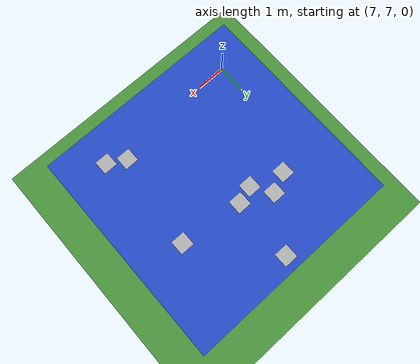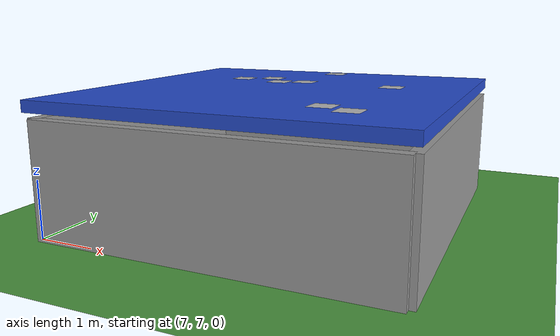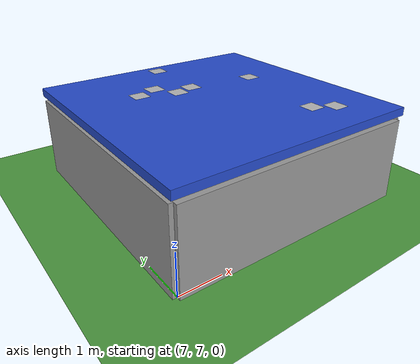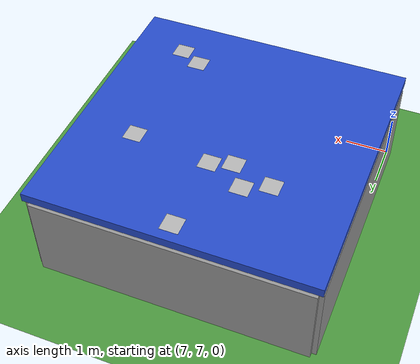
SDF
<sdf version="1.6">
 <world name="default">
  <wind><linear_velocity>11 11 0</linear_velocity></wind>
  <scene><shadows>0</shadows></scene>
  <physics type="ode">
   <ode>
    <solver><type>quick</type><iters>100</iters><sor>1.0</sor></solver>
    <constraints>
     <cfm>0.0</cfm>
     <erp>0.2</erp>
     <contact_max_correcting_vel>0.1</contact_max_correcting_vel>
     <contact_surface_layer>0.0</contact_surface_layer>
    </constraints>
   </ode>
   <real_time_update_rate>-1</real_time_update_rate>
  </physics>
  <gravity>0 0 -9.8</gravity>
  <include><uri>model://sun</uri></include>
  <model name="ground_plane">
   <static>true</static>
   <link name="link">
    <collision name="collision">
     <geometry><plane><normal>0 0 1</normal><size>5000 5000</size></plane></geometry>
     <surface><friction><ode><mu>100</mu><mu2>50</mu2></ode></friction></surface>
    </collision>
    <visual name="background">
     <pose>0 0 -0.1 0 0 0</pose>
     <cast_shadows>false</cast_shadows>
     <geometry><plane><normal>0 0 1</normal><size>50 50</size></plane></geometry>
     <material>
      <script><uri>file://media/materials/scripts/gazebo.material</uri><name>Gazebo/Grass</name></script>
     </material>
    </visual>
    <visual name="qrcode1">
     <pose>0 0 0.005 0 0 0</pose>
     <cast_shadows>false</cast_shadows>
     <geometry><plane><normal>0 0 1</normal><size>0.2 0.2</size></plane></geometry>
     <material>
      <script><uri>file://media/materials/scripts/gazebo2.material</uri><name>Gazebo/Aruco72</name></script>
     </material>
    </visual>
   </link>
  </model>
  <model name="house">
   <pose>10 10 0 0 0 0</pose>
   <static>true</static>
   <link name="link">
    <collision name="wall_north">
     <pose>0 3 1 0 0 0</pose>
     <geometry><box><size>6 0.2 2</size></box></geometry>
    </collision>
    <visual name="wall_north">
     <pose>0 3 1 0 0 0</pose>
     <geometry><box><size>6 0.2 2</size></box></geometry>
     <material>
      <script><uri>file://media/materials/scripts/gazebo.material</uri><name>Gazebo/Grey</name></script>
     </material>
    </visual>
    <collision name="wall_south">
     <pose>0 -3 1 0 0 0</pose>
     <geometry><box><size>6 0.2 2</size></box></geometry>
    </collision>
    <visual name="wall_south">
     <pose>0 -3 1 0 0 0</pose>
     <geometry><box><size>6 0.2 2</size></box></geometry>
     <material>
      <script><uri>file://media/materials/scripts/gazebo.material</uri><name>Gazebo/Grey</name></script>
     </material>
    </visual>
    <collision name="wall_east">
     <pose>3 0 1 0 0 0</pose>
     <geometry><box><size>0.2 6 2</size></box></geometry>
    </collision>
    <visual name="wall_east">
     <pose>3 0 1 0 0 0</pose>
     <geometry><box><size>0.2 6 2</size></box></geometry>
     <material>
      <script><uri>file://media/materials/scripts/gazebo.material</uri><name>Gazebo/Grey</name></script>
     </material>
    </visual>
    <collision name="wall_west">
     <pose>-3 0 1 0 0 0</pose>
     <geometry><box><size>0.2 6 2</size></box></geometry>
    </collision>
    <visual name="wall_west">
     <pose>-3 0 1 0 0 0</pose>
     <geometry><box><size>0.2 6 2</size></box></geometry>
     <material>
      <script><uri>file://media/materials/scripts/gazebo.material</uri><name>Gazebo/Grey</name></script>
     </material>
    </visual>
    <collision name="roof">
     <pose>0 0 2.2 0 0 0</pose>
     <geometry><box><size>6.2 6.2 0.2</size></box></geometry>
    </collision>
    <visual name="roof">
     <pose>0 0 2.2 0 0 0</pose>
     <geometry><box><size>6.2 6.2 0.2</size></box></geometry>
     <material>
      <script><uri>file://media/materials/scripts/gazebo.material</uri><name>Gazebo/Blue</name></script>
     </material>
    </visual>
    <visual name="aruco_roof_35_1">
     <pose>1.901 -2.130 2.310 0 0 0</pose>
     <cast_shadows>false</cast_shadows>
     <geometry><plane><normal>0 0 1</normal><size>0.4 0.4</size></plane></geometry>
     <material>
      <script><uri>file://media/materials/scripts/gazebo2.material</uri><name>Gazebo/Aruco35</name></script>
     </material>
    </visual>
    <visual name="aruco_roof_72_2">
     <pose>-0.856 1.350 2.310 0 0 0</pose>
     <cast_shadows>false</cast_shadows>
     <geometry><plane><normal>0 0 1</normal><size>0.4 0.4</size></plane></geometry>
     <material>
      <script><uri>file://media/materials/scripts/gazebo2.material</uri><name>Gazebo/Aruco72</name></script>
     </material>
    </visual>
    <visual name="aruco_roof_35_3">
     <pose>-0.012 0.958 2.310 0 0 0</pose>
     <cast_shadows>false</cast_shadows>
     <geometry><plane><normal>0 0 1</normal><size>0.4 0.4</size></plane></geometry>
     <material>
      <script><uri>file://media/materials/scripts/gazebo2.material</uri><name>Gazebo/Aruco35</name></script>
     </material>
    </visual>
    <visual name="aruco_roof_162_4">
     <pose>-1.399 1.107 2.310 0 0 0</pose>
     <cast_shadows>false</cast_shadows>
     <geometry><plane><normal>0 0 1</normal><size>0.4 0.4</size></plane></geometry>
     <material>
      <script><uri>file://media/materials/scripts/gazebo2.material</uri><name>Gazebo/Aruco162</name></script>
     </material>
    </visual>
    <visual name="aruco_roof_72_5">
     <pose>1.412 -1.856 2.310 0 0 0</pose>
     <cast_shadows>false</cast_shadows>
     <geometry><plane><normal>0 0 1</normal><size>0.4 0.4</size></plane></geometry>
     <material>
      <script><uri>file://media/materials/scripts/gazebo2.material</uri><name>Gazebo/Aruco72</name></script>
     </material>
    </visual>
    <visual name="aruco_roof_226_6">
     <pose>-0.492 0.811 2.310 0 0 0</pose>
     <cast_shadows>false</cast_shadows>
     <geometry><plane><normal>0 0 1</normal><size>0.4 0.4</size></plane></geometry>
     <material>
      <script><uri>file://media/materials/scripts/gazebo2.material</uri><name>Gazebo/Aruco226</name></script>
     </material>
    </visual>
    <visual name="aruco_roof_138_7">
     <pose>1.750 0.756 2.310 0 0 0</pose>
     <cast_shadows>false</cast_shadows>
     <geometry><plane><normal>0 0 1</normal><size>0.4 0.4</size></plane></geometry>
     <material>
      <script><uri>file://media/materials/scripts/gazebo2.material</uri><name>Gazebo/Aruco138</name></script>
     </material>
    </visual>
    <visual name="aruco_roof_35_8">
     <pose>0.021 2.702 2.310 0 0 0</pose>
     <cast_shadows>false</cast_shadows>
     <geometry><plane><normal>0 0 1</normal><size>0.4 0.4</size></plane></geometry>
     <material>
      <script><uri>file://media/materials/scripts/gazebo2.material</uri><name>Gazebo/Aruco35</name></script>
     </material>
    </visual>
   </link>
  </model>
 </world>
</sdf>
